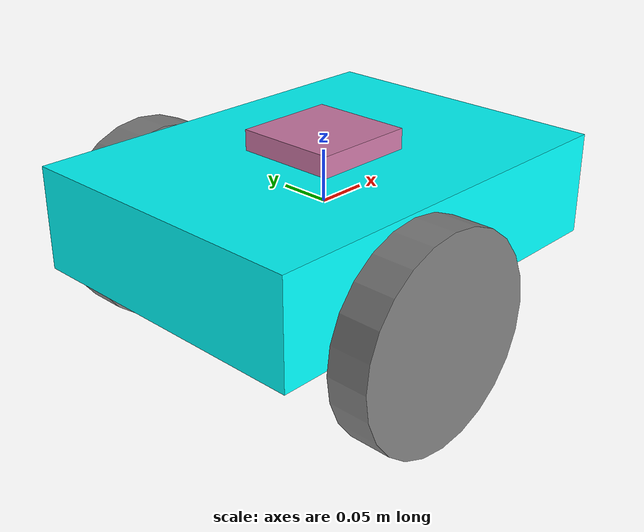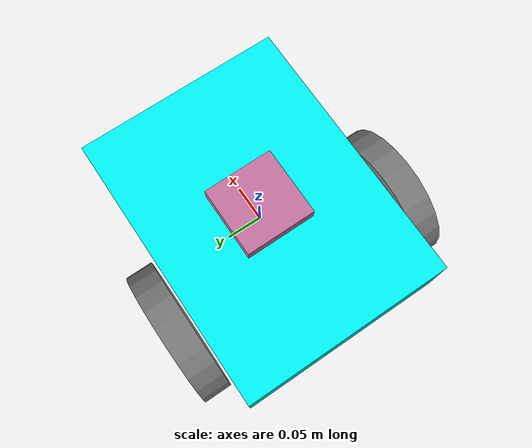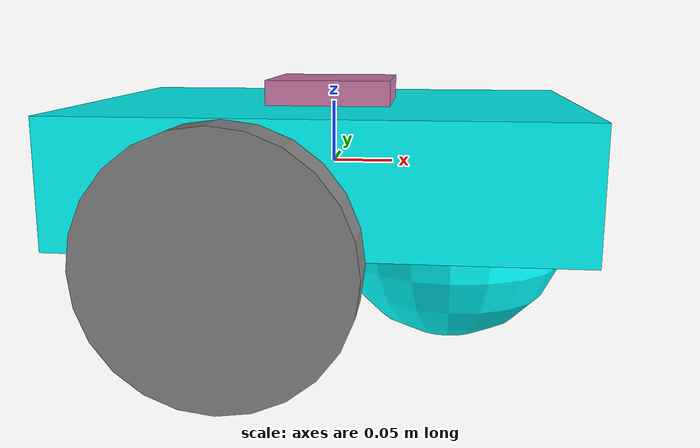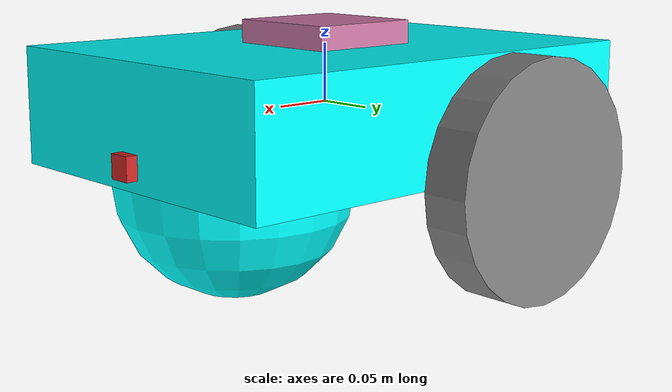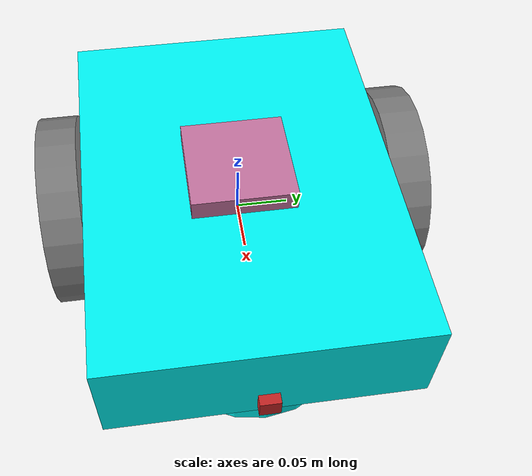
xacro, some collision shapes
<?xml version="1.0"?>
<robot name="my_robot" xmlns:xacro="http://ros.org/wiki/xacro">
  <xacro:include filename="$(find my_robot)/urdf/my_robot.gazebo" />

  <!-- Define robot constants -->
  <xacro:property name="chassis_width" value="0.3"/>
  <xacro:property name="chassis_length" value="0.4"/>
  <xacro:property name="chassis_height" value="0.10"/>

  <xacro:property name="wheel_radius" value="0.10"/>
  <xacro:property name="wheel_width" value="0.04"/>
  <xacro:property name="wheel_ygap" value="0.025"/>
  <xacro:property name="wheel_zoff" value="0.05"/>
  <xacro:property name="wheel_xoff" value="0.06"/>

  <xacro:property name="caster_xoff" value="0.10"/>

  <xacro:property name="camera_width" value="0.02" />
  <xacro:property name="camera_length" value="0.02" />
  <xacro:property name="camera_height" value="0.02" />
  <xacro:property name="camera_mass" value="0.01" />

  <!-- Define inertial property macros  -->
  <xacro:macro name="box_inertia" params="m w h d">
    <inertial>
      <origin xyz="0 0 0" rpy="${pi/2} 0 ${pi/2}"/>
      <mass value="${m}"/>
      <inertia ixx="${(m/12) * (h*h + d*d)}" ixy="0.0" ixz="0.0" iyy="${(m/12) * (w*w + d*d)}" iyz="0.0" izz="${(m/12) * (w*w + h*h)}"/>
    </inertial>
  </xacro:macro>

  <xacro:macro name="cylinder_inertia" params="m r h">
    <inertial>
      <origin xyz="0 0 0" rpy="${pi/2} 0 0" />
      <mass value="${m}"/>
      <inertia ixx="${(m/12) * (3*r*r + h*h)}" ixy = "0" ixz = "0" iyy="${(m/12) * (3*r*r + h*h)}" iyz = "0" izz="${(m/2) * (r*r)}"/>
    </inertial>
  </xacro:macro>

  <xacro:macro name="sphere_inertia" params="m r">
    <inertial>
      <mass value="${m}"/>
      <inertia ixx="${(2/5) * m * (r*r)}" ixy="0.0" ixz="0.0" iyy="${(2/5) * m * (r*r)}" iyz="0.0" izz="${(2/5) * m * (r*r)}"/>
    </inertial>
  </xacro:macro>

  <!-- Wheels -->
  <xacro:macro name="wheel" params="prefix x_reflect y_reflect">
    <link name="${prefix}_wheel">
      <visual>
        <origin xyz="0 0 0" rpy="${pi/2} 0 0"/>
        <geometry>
            <cylinder radius="${wheel_radius}" length="${wheel_width}"/>
        </geometry>
        <material name="Gray">
          <color rgba="0.5 0.5 0.5 1.0"/>
        </material>
      </visual>
      <collision>
        <origin xyz="0 0 0" rpy="${pi/2} 0 0"/>
        <geometry>
          <cylinder radius="${wheel_radius}" length="${wheel_width}"/>
        </geometry>
      </collision>

      <xacro:cylinder_inertia m="0.5" r="${wheel_radius}" h="${wheel_width}"/>
    </link>

    <joint name="${prefix}_wheel_hinge" type="continuous">
      <parent link="chassis"/>
      <child link="${prefix}_wheel"/>
      <origin xyz="${x_reflect*wheel_xoff} ${y_reflect*(chassis_width/2+wheel_ygap)} ${-wheel_zoff}" rpy="0 0 0"/>
      <axis xyz="0 1 0"/>
      <limit effort="100" velocity="100"/>
      <dynamics damping="0.1" friction="0.1"/>
    </joint>
  </xacro:macro>

  <!-- Robot Base -->
  <link name="chassis">
    <visual>
      <geometry>
        <box size="${chassis_length} ${chassis_width} ${chassis_height}"/>
      </geometry>
      <material name="Cyan">
        <color rgba="0 1.0 1.0 1.0"/>
      </material>
    </visual>
    <collision>
      <geometry>
        <box size="${chassis_length} ${chassis_width} ${chassis_height}"/>
      </geometry>
    </collision>

  </link>

  <!-- Robot Footprint -->
  <link name="base_footprint"/>

  <joint name="base_joint" type="fixed">
    <parent link="chassis"/>
    <child link="base_footprint"/>
    <origin xyz="0.0 0.0 ${-(wheel_radius+wheel_zoff)}" rpy="0 0 0"/>
  </joint>

  <xacro:wheel prefix="left" x_reflect="-1" y_reflect="1" />
  <xacro:wheel prefix="right" x_reflect="-1" y_reflect="-1" />

  <!-- Caster Wheel -->
  <link name="front_caster">
    <visual>
      <geometry>
        <sphere radius="${(wheel_radius/2+wheel_zoff)}"/>
      </geometry>
      <material name="Cyan">
        <color rgba="0 1.0 1.0 1.0"/>
      </material>
    </visual>
    <collision>
      <origin xyz="0 0 0" rpy="0 0 0"/>
      <geometry>
        <sphere radius="${(wheel_radius/2+wheel_zoff)}"/>
      </geometry>
    </collision>

    <xacro:sphere_inertia m="0.5" r="${(wheel_radius/2+wheel_zoff)}"/>
  </link>

  <joint name="caster_joint" type="fixed">
    <parent link="chassis"/>
    <child link="front_caster"/>
    <origin xyz="${caster_xoff} 0.0 ${-wheel_radius/2}" rpy="0 0 0"/>
  </joint>

  <!-- camera -->
  <link name="camera">
    <inertial>
      <mass value="${camera_mass}"/>
      <origin xyz="0 0 0" rpy="0 0 0"/>
      <inertia ixx="1e-6" ixy="0" ixz="0" iyy="1e-6" iyz="0" izz="1e-6"/>
    </inertial>
    <collision>
      <origin xyz="0 0 0" rpy="0 0 0"/>
      <geometry>
        <box size="${camera_length} ${camera_width} ${camera_height}"/>
      </geometry>
    </collision>
    <visual>
      <origin xyz="0 0 0" rpy="0 0 0"/>
      <geometry>
        <box size="${camera_length} ${camera_width} ${camera_height}"/>
      </geometry>
    </visual>
  </link>

  <joint type="fixed" name="camera_joint">
    <origin xyz="${chassis_length/2} 0 ${-chassis_height/2 + camera_height}" rpy="0 0 0"/>
    <child link="camera"/>
    <parent link="chassis"/>
    <axis xyz="0 1 0" rpy="0 0 0"/>
  </joint>

  <!-- lidar -->
  <link name="hokuyo">
    <inertial>
      <mass value="1e-5"/>
      <origin xyz="0 0 0" rpy="0 0 0"/>
      <inertia ixx="1e-6" ixy="0" ixz="0" iyy="1e-6" iyz="0" izz="1e-6"/>
    </inertial>
    <collision>
      <origin xyz="0 0 0" rpy="0 0 0"/>
      <geometry>
        <box size=".1 .1 .1"/>
      </geometry>
    </collision>
    <visual>
      <origin xyz="0 0 0" rpy="0 0 0"/>
      <geometry>
        <mesh filename="package://my_robot/meshes/hokuyo.dae"/>
      </geometry>
    </visual>
  </link>

  <joint type="fixed" name="hokuyo_joint">
    <origin xyz="0 0 .02" rpy="0 0 0"/>
    <child link="hokuyo"/>
    <parent link="chassis"/>
    <axis xyz="0 1 0" rpy="0 0 0"/>
  </joint>

  <!-- Robot material/colour -->
  <gazebo reference="camera">
    <material>Gazebo/Red</material>
  </gazebo>
  <gazebo reference="chassis">
    <material>Gazebo/Blue</material>
  </gazebo>
  <gazebo reference="left_wheel">
    <material>Gazebo/Black</material>
  </gazebo>
  <gazebo reference="right_wheel">
    <material>Gazebo/Black</material>
  </gazebo>
</robot>
